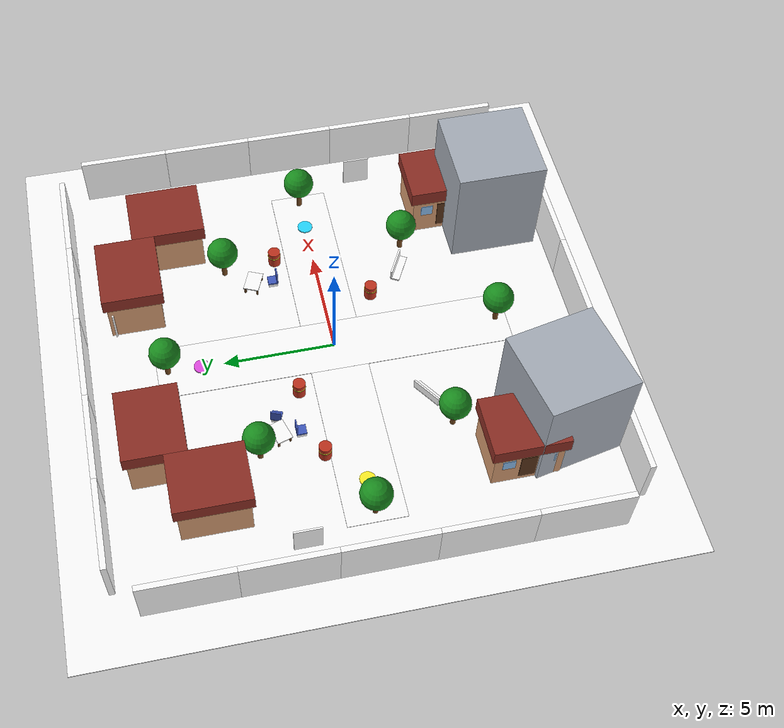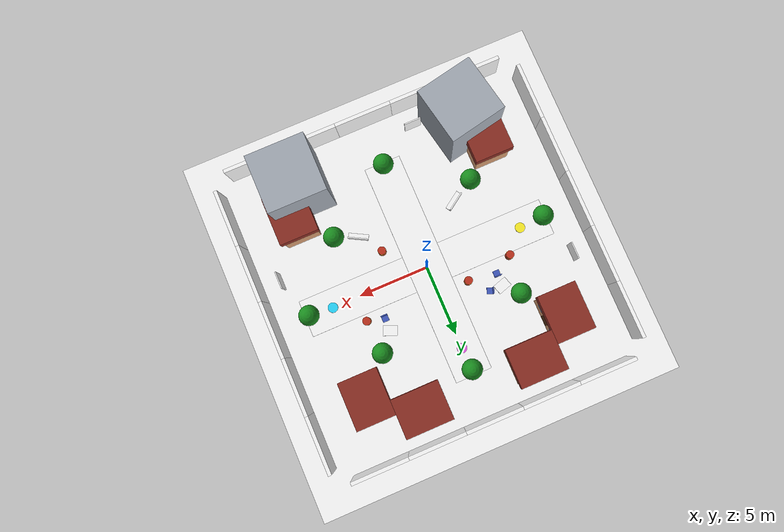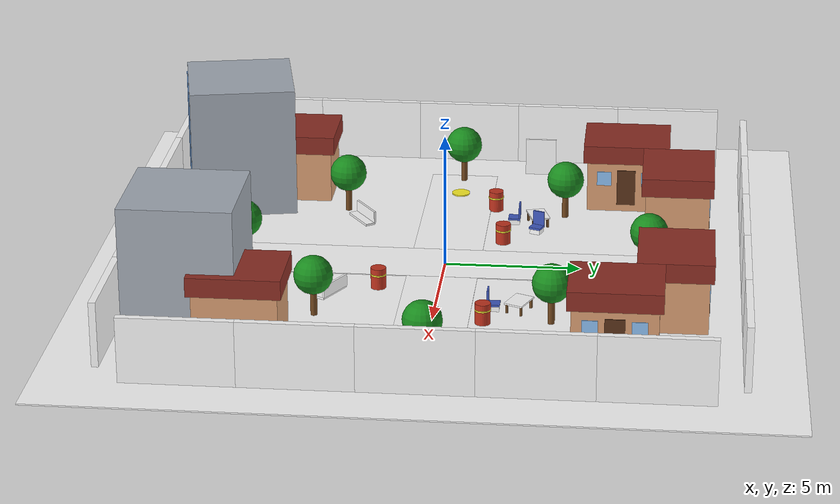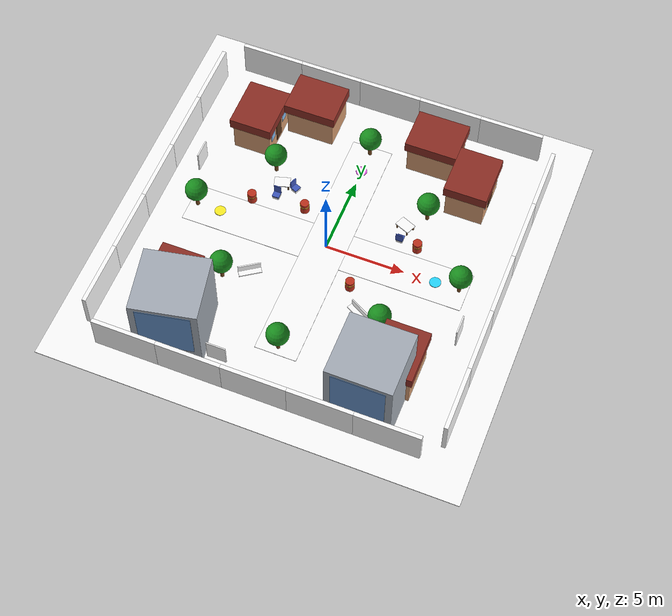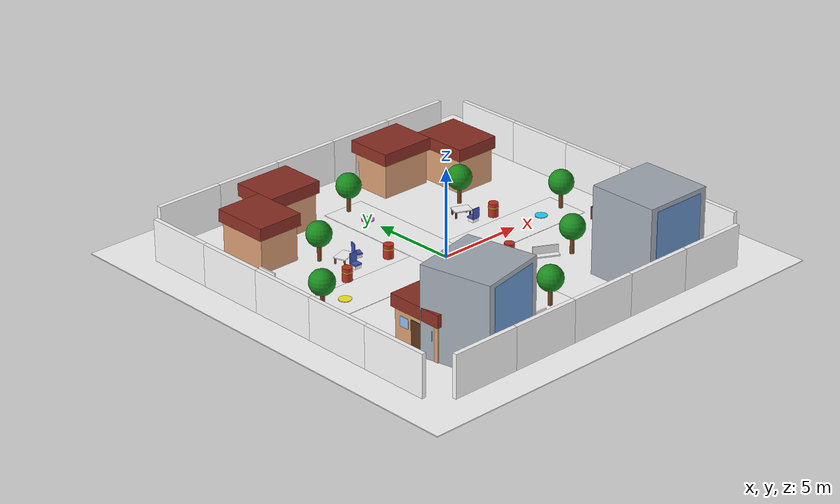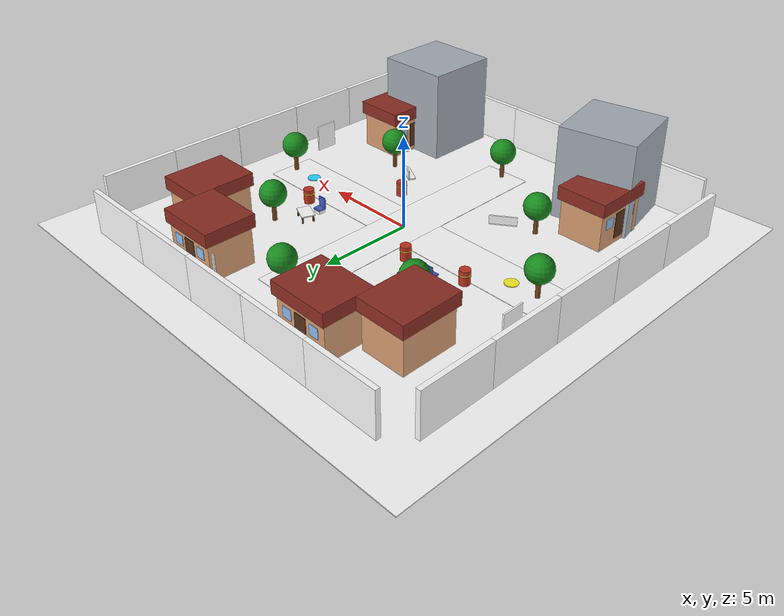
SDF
<?xml version="1.0"?>
<sdf version="1.8">
  <world name="outdoor_path">
    <physics name="1ms" type="ignored">
      <max_step_size>0.001</max_step_size>
      <real_time_factor>1.0</real_time_factor>
    </physics>
    <plugin filename="gz-sim-physics-system" name="gz::sim::systems::Physics"/>
    <plugin filename="gz-sim-user-commands-system" name="gz::sim::systems::UserCommands"/>
    <plugin filename="gz-sim-scene-broadcaster-system" name="gz::sim::systems::SceneBroadcaster"/>
    <plugin filename="gz-sim-sensors-system" name="gz::sim::systems::Sensors">
      <render_engine>ogre2</render_engine>
    </plugin>

    <scene>
      <ambient>0.72 0.72 0.75 1</ambient>
      <background>0.65 0.75 0.88 1</background>
      <shadows>false</shadows>
    </scene>

    <light type="directional" name="sun">
      <cast_shadows>false</cast_shadows>
      <pose>0 0 12 0 0 0</pose>
      <diffuse>0.9 0.9 0.92 1</diffuse>
      <specular>0.05 0.05 0.05 1</specular>
      <direction>0.15 0.1 -1</direction>
    </light>

    <!-- Compact grass field (~26x26) -->
    <model name="grass">
      <static>true</static>
      <link name="grass_link">
        <collision name="col">
          <geometry><box><size>26 26 0.05</size></box></geometry>
        </collision>
        <visual name="vis">
          <cast_shadows>false</cast_shadows>
          <geometry><box><size>26 26 0.05</size></box></geometry>
          <material>
            <ambient>0.2 0.45 0.18 1</ambient>
            <diffuse>1 1 1 1</diffuse>
            <pbr><metal><albedo_map>model://textures/grass.png</albedo_map></metal></pbr>
          </material>
        </visual>
      </link>
    </model>

    <!-- Roads: short E-W + N-S (closed plaza) -->
    <model name="road_ew">
      <static>true</static>
      <pose>0 0 0.03 0 0 0</pose>
      <link name="road_link">
        <collision name="col"><geometry><box><size>18 2.6 0.04</size></box></geometry></collision>
        <visual name="vis">
          <cast_shadows>false</cast_shadows>
          <geometry><box><size>18 2.6 0.04</size></box></geometry>
          <material>
            <ambient>0.35 0.35 0.35 1</ambient>
            <diffuse>1 1 1 1</diffuse>
            <pbr><metal><albedo_map>model://textures/asphalt.png</albedo_map></metal></pbr>
          </material>
        </visual>
      </link>
    </model>
    <model name="road_ns">
      <static>true</static>
      <pose>0 0 0.031 0 0 0</pose>
      <link name="road_link">
        <collision name="col"><geometry><box><size>2.6 16 0.04</size></box></geometry></collision>
        <visual name="vis">
          <cast_shadows>false</cast_shadows>
          <geometry><box><size>2.6 16 0.04</size></box></geometry>
          <material>
            <ambient>0.35 0.35 0.35 1</ambient>
            <diffuse>1 1 1 1</diffuse>
            <pbr><metal><albedo_map>model://textures/asphalt.png</albedo_map></metal></pbr>
          </material>
        </visual>
      </link>
    </model>

    <!-- Perimeter walls (closed courtyard) — wall length 4m each -->
    <!-- North wall y=+11 -->
    <include><name>wall_n0</name><uri>model://simple_wall</uri><pose>-8 11 1.2 0 0 0</pose></include>
    <include><name>wall_n1</name><uri>model://simple_wall</uri><pose>-4 11 1.2 0 0 0</pose></include>
    <include><name>wall_n2</name><uri>model://simple_wall</uri><pose>0 11 1.2 0 0 0</pose></include>
    <include><name>wall_n3</name><uri>model://simple_wall</uri><pose>4 11 1.2 0 0 0</pose></include>
    <include><name>wall_n4</name><uri>model://simple_wall</uri><pose>8 11 1.2 0 0 0</pose></include>
    <!-- South wall y=-11 -->
    <include><name>wall_s0</name><uri>model://simple_wall</uri><pose>-8 -11 1.2 0 0 0</pose></include>
    <include><name>wall_s1</name><uri>model://simple_wall</uri><pose>-4 -11 1.2 0 0 0</pose></include>
    <include><name>wall_s2</name><uri>model://simple_wall</uri><pose>0 -11 1.2 0 0 0</pose></include>
    <include><name>wall_s3</name><uri>model://simple_wall</uri><pose>4 -11 1.2 0 0 0</pose></include>
    <include><name>wall_s4</name><uri>model://simple_wall</uri><pose>8 -11 1.2 0 0 0</pose></include>
    <!-- West wall x=-11 (rotated) -->
    <include><name>wall_w0</name><uri>model://simple_wall</uri><pose>-11 -8 1.2 0 0 1.5708</pose></include>
    <include><name>wall_w1</name><uri>model://simple_wall</uri><pose>-11 -4 1.2 0 0 1.5708</pose></include>
    <include><name>wall_w2</name><uri>model://simple_wall</uri><pose>-11 0 1.2 0 0 1.5708</pose></include>
    <include><name>wall_w3</name><uri>model://simple_wall</uri><pose>-11 4 1.2 0 0 1.5708</pose></include>
    <include><name>wall_w4</name><uri>model://simple_wall</uri><pose>-11 8 1.2 0 0 1.5708</pose></include>
    <!-- East wall x=+11 -->
    <include><name>wall_e0</name><uri>model://simple_wall</uri><pose>11 -8 1.2 0 0 1.5708</pose></include>
    <include><name>wall_e1</name><uri>model://simple_wall</uri><pose>11 -4 1.2 0 0 1.5708</pose></include>
    <include><name>wall_e2</name><uri>model://simple_wall</uri><pose>11 0 1.2 0 0 1.5708</pose></include>
    <include><name>wall_e3</name><uri>model://simple_wall</uri><pose>11 4 1.2 0 0 1.5708</pose></include>
    <include><name>wall_e4</name><uri>model://simple_wall</uri><pose>11 8 1.2 0 0 1.5708</pose></include>

    <!-- Houses packed near walls -->
    <include><name>house_1</name><uri>model://simple_house</uri><pose>-7 6.5 0 0 0 1.5708</pose></include>
    <include><name>house_2</name><uri>model://simple_house</uri><pose>-7 -6.5 0 0 0 -1.5708</pose></include>
    <include><name>house_3</name><uri>model://simple_house</uri><pose>7 6.5 0 0 0 1.5708</pose></include>
    <include><name>house_4</name><uri>model://simple_house</uri><pose>7 -6.5 0 0 0 -1.5708</pose></include>
    <include><name>house_5</name><uri>model://simple_house</uri><pose>-4 8.5 0 0 0 3.1416</pose></include>
    <include><name>house_6</name><uri>model://simple_house</uri><pose>4 8.5 0 0 0 3.1416</pose></include>

    <include><name>building_1</name><uri>model://simple_building</uri><pose>6 -8.5 0 0 0 0</pose></include>
    <include><name>building_2</name><uri>model://simple_building</uri><pose>-6 -8.5 0 0 0 0.2</pose></include>

    <!-- Furniture / clutter (visual landmarks) -->
    <include><name>table_1</name><uri>model://simple_table</uri><pose>-4.2 3.2 0 0 0 0.3</pose></include>
    <include><name>chair_1</name><uri>model://simple_chair</uri><pose>-4.2 2.3 0 0 0 0</pose></include>
    <include><name>chair_2</name><uri>model://simple_chair</uri><pose>-3.3 3.2 0 0 0 1.2</pose></include>
    <include><name>table_2</name><uri>model://simple_table</uri><pose>4.0 3.0 0 0 0 -0.4</pose></include>
    <include><name>chair_3</name><uri>model://simple_chair</uri><pose>4.0 2.1 0 0 0 3.14</pose></include>
    <include><name>bench_1</name><uri>model://simple_bench</uri><pose>-3.5 -3.5 0 0 0 0.6</pose></include>
    <include><name>bench_2</name><uri>model://simple_bench</uri><pose>3.5 -3.8 0 0 0 -0.5</pose></include>
    <include><name>barrel_1</name><uri>model://simple_barrel</uri><pose>-2.2 2.0 0 0 0 0</pose></include>
    <include><name>barrel_2</name><uri>model://simple_barrel</uri><pose>2.4 -2.2 0 0 0 0.5</pose></include>
    <include><name>barrel_3</name><uri>model://simple_barrel</uri><pose>-5.5 1.5 0 0 0 0</pose></include>
    <include><name>barrel_4</name><uri>model://simple_barrel</uri><pose>5.2 1.8 0 0 0 0</pose></include>

    <!-- Checker panels = strong visual landmarks for RTAB -->
    <include><name>check_1</name><uri>model://checker_panel</uri><pose>-9.5 3 0 0 0 1.5708</pose></include>
    <include><name>check_2</name><uri>model://checker_panel</uri><pose>9.5 -3 0 0 0 -1.5708</pose></include>
    <include><name>check_3</name><uri>model://checker_panel</uri><pose>3 9.5 0 0 0 0</pose></include>
    <include><name>check_4</name><uri>model://checker_panel</uri><pose>-3 -9.5 0 0 0 3.1416</pose></include>

    <!-- Trees -->
    <include><name>tree_0</name><uri>model://simple_tree</uri><pose>-5 4.2 0 0 0 0</pose></include>
    <include><name>tree_1</name><uri>model://simple_tree</uri><pose>5 4.2 0 0 0 0</pose></include>
    <include><name>tree_2</name><uri>model://simple_tree</uri><pose>-5 -4.2 0 0 0 0</pose></include>
    <include><name>tree_3</name><uri>model://simple_tree</uri><pose>5 -4.2 0 0 0 0</pose></include>
    <include><name>tree_4</name><uri>model://simple_tree</uri><pose>-8.5 0 0 0 0 0</pose></include>
    <include><name>tree_5</name><uri>model://simple_tree</uri><pose>8.5 0 0 0 0 0</pose></include>
    <include><name>tree_6</name><uri>model://simple_tree</uri><pose>0 7.5 0 0 0 0</pose></include>
    <include><name>tree_7</name><uri>model://simple_tree</uri><pose>0 -7.5 0 0 0 0</pose></include>

    <!-- Goals -->
    <model name="point_A">
      <static>true</static>
      <pose>-7 0 0.08 0 0 0</pose>
      <link name="link">
        <visual name="vis">
          <cast_shadows>false</cast_shadows>
          <geometry><cylinder><radius>0.35</radius><length>0.05</length></cylinder></geometry>
          <material><ambient>0.9 0.8 0.1 1</ambient><diffuse>1 0.95 0.15 1</diffuse></material>
        </visual>
      </link>
    </model>
    <model name="point_B">
      <static>true</static>
      <pose>7 0 0.08 0 0 0</pose>
      <link name="link">
        <visual name="vis">
          <cast_shadows>false</cast_shadows>
          <geometry><cylinder><radius>0.35</radius><length>0.05</length></cylinder></geometry>
          <material><ambient>0.1 0.6 0.8 1</ambient><diffuse>0.15 0.85 1 1</diffuse></material>
        </visual>
      </link>
    </model>
    <model name="point_C">
      <static>true</static>
      <pose>0 6 0.08 0 0 0</pose>
      <link name="link">
        <visual name="vis">
          <cast_shadows>false</cast_shadows>
          <geometry><cylinder><radius>0.35</radius><length>0.05</length></cylinder></geometry>
          <material><ambient>0.7 0.2 0.7 1</ambient><diffuse>0.9 0.3 0.9 1</diffuse></material>
        </visual>
      </link>
    </model>
  </world>
</sdf>

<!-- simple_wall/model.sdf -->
<sdf version="1.8">
  <model name="simple_wall">
    <static>true</static>
    <link name="link">
      <collision name="col">
        <geometry><box><size>4.0 0.25 2.4</size></box></geometry>
      </collision>
      <visual name="vis">
        <cast_shadows>false</cast_shadows>
        <geometry><box><size>4.0 0.25 2.4</size></box></geometry>
        <material>
          <ambient>0.7 0.7 0.7 1</ambient>
          <diffuse>1 1 1 1</diffuse>
          <pbr>
            <metal>
              <albedo_map>model://textures/brick.png</albedo_map>
            </metal>
          </pbr>
        </material>
      </visual>
    </link>
  </model>
</sdf>

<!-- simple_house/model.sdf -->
<sdf version="1.8">
  <model name="simple_house">
    <static>true</static>
    <link name="body">
      <pose>0 0 1.0 0 0 0</pose>
      <collision name="body_col">
        <geometry><box><size>3.0 2.4 2.0</size></box></geometry>
      </collision>
      <visual name="body_vis">
        <cast_shadows>false</cast_shadows>
        <geometry><box><size>3.0 2.4 2.0</size></box></geometry>
        <material>
          <ambient>0.75 0.55 0.40 1</ambient>
          <diffuse>0.85 0.62 0.45 1</diffuse>
        </material>
      </visual>
      <visual name="roof_vis">
        <cast_shadows>false</cast_shadows>
        <pose>0 0 1.35 0 0 0</pose>
        <geometry><box><size>3.3 2.7 0.7</size></box></geometry>
        <material>
          <ambient>0.45 0.15 0.12 1</ambient>
          <diffuse>0.55 0.18 0.14 1</diffuse>
        </material>
      </visual>
      <visual name="door_vis">
        <cast_shadows>false</cast_shadows>
        <pose>0 -1.21 0.0 0 0 0</pose>
        <geometry><box><size>0.7 0.05 1.4</size></box></geometry>
        <material>
          <ambient>0.25 0.15 0.08 1</ambient>
          <diffuse>0.35 0.20 0.10 1</diffuse>
        </material>
      </visual>
      <visual name="window_l">
        <cast_shadows>false</cast_shadows>
        <pose>-0.85 -1.21 0.35 0 0 0</pose>
        <geometry><box><size>0.55 0.04 0.55</size></box></geometry>
        <material>
          <ambient>0.45 0.65 0.85 1</ambient>
          <diffuse>0.55 0.75 0.95 1</diffuse>
        </material>
      </visual>
      <visual name="window_r">
        <cast_shadows>false</cast_shadows>
        <pose>0.85 -1.21 0.35 0 0 0</pose>
        <geometry><box><size>0.55 0.04 0.55</size></box></geometry>
        <material>
          <ambient>0.45 0.65 0.85 1</ambient>
          <diffuse>0.55 0.75 0.95 1</diffuse>
        </material>
      </visual>
    </link>
  </model>
</sdf>

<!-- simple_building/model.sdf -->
<sdf version="1.8">
  <model name="simple_building">
    <static>true</static>
    <link name="body">
      <pose>0 0 2.5 0 0 0</pose>
      <collision name="body_col">
        <geometry><box><size>4.0 4.0 5.0</size></box></geometry>
      </collision>
      <visual name="body_vis">
        <cast_shadows>false</cast_shadows>
        <geometry><box><size>4.0 4.0 5.0</size></box></geometry>
        <material>
          <ambient>0.55 0.58 0.62 1</ambient>
          <diffuse>0.65 0.68 0.72 1</diffuse>
        </material>
      </visual>
      <visual name="win_front">
        <cast_shadows>false</cast_shadows>
        <pose>0 -2.01 0.5 0 0 0</pose>
        <geometry><box><size>3.2 0.05 3.5</size></box></geometry>
        <material>
          <ambient>0.35 0.50 0.70 1</ambient>
          <diffuse>0.40 0.58 0.80 1</diffuse>
        </material>
      </visual>
    </link>
  </model>
</sdf>

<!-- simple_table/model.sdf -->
<sdf version="1.8">
  <model name="simple_table">
    <static>true</static>
    <link name="link">
      <pose>0 0 0.4 0 0 0</pose>
      <collision name="top_col">
        <geometry><box><size>1.0 0.7 0.06</size></box></geometry>
      </collision>
      <visual name="top">
        <cast_shadows>false</cast_shadows>
        <geometry><box><size>1.0 0.7 0.06</size></box></geometry>
        <material>
          <ambient>0.55 0.4 0.25 1</ambient>
          <diffuse>1 1 1 1</diffuse>
          <pbr><metal><albedo_map>model://textures/wood.png</albedo_map></metal></pbr>
        </material>
      </visual>
      <visual name="leg1">
        <cast_shadows>false</cast_shadows>
        <pose>-0.4 -0.28 -0.37 0 0 0</pose>
        <geometry><box><size>0.08 0.08 0.7</size></box></geometry>
        <material><ambient>0.3 0.2 0.1 1</ambient><diffuse>0.45 0.3 0.15 1</diffuse></material>
      </visual>
      <visual name="leg2">
        <cast_shadows>false</cast_shadows>
        <pose>0.4 -0.28 -0.37 0 0 0</pose>
        <geometry><box><size>0.08 0.08 0.7</size></box></geometry>
        <material><ambient>0.3 0.2 0.1 1</ambient><diffuse>0.45 0.3 0.15 1</diffuse></material>
      </visual>
      <visual name="leg3">
        <cast_shadows>false</cast_shadows>
        <pose>-0.4 0.28 -0.37 0 0 0</pose>
        <geometry><box><size>0.08 0.08 0.7</size></box></geometry>
        <material><ambient>0.3 0.2 0.1 1</ambient><diffuse>0.45 0.3 0.15 1</diffuse></material>
      </visual>
      <visual name="leg4">
        <cast_shadows>false</cast_shadows>
        <pose>0.4 0.28 -0.37 0 0 0</pose>
        <geometry><box><size>0.08 0.08 0.7</size></box></geometry>
        <material><ambient>0.3 0.2 0.1 1</ambient><diffuse>0.45 0.3 0.15 1</diffuse></material>
      </visual>
    </link>
  </model>
</sdf>

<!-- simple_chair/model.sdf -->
<sdf version="1.8">
  <model name="simple_chair">
    <static>true</static>
    <link name="link">
      <pose>0 0 0.25 0 0 0</pose>
      <collision name="seat_col">
        <geometry><box><size>0.45 0.45 0.08</size></box></geometry>
      </collision>
      <visual name="seat">
        <cast_shadows>false</cast_shadows>
        <geometry><box><size>0.45 0.45 0.08</size></box></geometry>
        <material>
          <ambient>0.2 0.25 0.55 1</ambient>
          <diffuse>0.25 0.35 0.75 1</diffuse>
        </material>
      </visual>
      <visual name="back">
        <cast_shadows>false</cast_shadows>
        <pose>0 0.2 0.3 0 0 0</pose>
        <geometry><box><size>0.45 0.06 0.55</size></box></geometry>
        <material>
          <ambient>0.2 0.25 0.55 1</ambient>
          <diffuse>0.25 0.35 0.75 1</diffuse>
        </material>
      </visual>
      <visual name="leg">
        <cast_shadows>false</cast_shadows>
        <pose>0 0 -0.2 0 0 0</pose>
        <geometry><box><size>0.4 0.4 0.35</size></box></geometry>
        <material>
          <ambient>0.35 0.25 0.15 1</ambient>
          <diffuse>1 1 1 1</diffuse>
          <pbr><metal><albedo_map>model://textures/wood.png</albedo_map></metal></pbr>
        </material>
      </visual>
    </link>
  </model>
</sdf>

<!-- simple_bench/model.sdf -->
<sdf version="1.8">
  <model name="simple_bench">
    <static>true</static>
    <link name="link">
      <pose>0 0 0.28 0 0 0</pose>
      <collision name="col">
        <geometry><box><size>1.4 0.4 0.08</size></box></geometry>
      </collision>
      <visual name="seat">
        <cast_shadows>false</cast_shadows>
        <geometry><box><size>1.4 0.4 0.08</size></box></geometry>
        <material>
          <ambient>0.45 0.3 0.15 1</ambient>
          <diffuse>1 1 1 1</diffuse>
          <pbr><metal><albedo_map>model://textures/wood.png</albedo_map></metal></pbr>
        </material>
      </visual>
      <visual name="back">
        <cast_shadows>false</cast_shadows>
        <pose>0 0.18 0.25 0 0 0</pose>
        <geometry><box><size>1.4 0.08 0.45</size></box></geometry>
        <material>
          <ambient>0.45 0.3 0.15 1</ambient>
          <diffuse>1 1 1 1</diffuse>
          <pbr><metal><albedo_map>model://textures/wood.png</albedo_map></metal></pbr>
        </material>
      </visual>
    </link>
  </model>
</sdf>

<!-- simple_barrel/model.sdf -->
<sdf version="1.8">
  <model name="simple_barrel">
    <static>true</static>
    <link name="link">
      <pose>0 0 0.4 0 0 0</pose>
      <collision name="col">
        <geometry><cylinder><radius>0.28</radius><length>0.8</length></cylinder></geometry>
      </collision>
      <visual name="vis">
        <cast_shadows>false</cast_shadows>
        <geometry><cylinder><radius>0.28</radius><length>0.8</length></cylinder></geometry>
        <material>
          <ambient>0.55 0.15 0.1 1</ambient>
          <diffuse>0.75 0.2 0.12 1</diffuse>
        </material>
      </visual>
      <visual name="ring">
        <cast_shadows>false</cast_shadows>
        <pose>0 0 0.15 0 0 0</pose>
        <geometry><cylinder><radius>0.29</radius><length>0.06</length></cylinder></geometry>
        <material>
          <ambient>0.7 0.7 0.15 1</ambient>
          <diffuse>0.95 0.9 0.2 1</diffuse>
        </material>
      </visual>
    </link>
  </model>
</sdf>

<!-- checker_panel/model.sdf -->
<sdf version="1.8">
  <model name="checker_panel">
    <static>true</static>
    <link name="link">
      <pose>0 0 0.75 0 0 0</pose>
      <collision name="col">
        <geometry><box><size>1.2 0.08 1.5</size></box></geometry>
      </collision>
      <visual name="vis">
        <cast_shadows>false</cast_shadows>
        <geometry><box><size>1.2 0.08 1.5</size></box></geometry>
        <material>
          <ambient>0.8 0.8 0.8 1</ambient>
          <diffuse>1 1 1 1</diffuse>
          <pbr><metal><albedo_map>model://textures/checker.png</albedo_map></metal></pbr>
        </material>
      </visual>
    </link>
  </model>
</sdf>

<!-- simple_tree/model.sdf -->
<sdf version="1.8">
  <model name="simple_tree">
    <static>true</static>
    <link name="trunk">
      <pose>0 0 0.6 0 0 0</pose>
      <collision name="trunk_col">
        <geometry><cylinder><radius>0.12</radius><length>1.2</length></cylinder></geometry>
      </collision>
      <visual name="trunk_vis">
        <cast_shadows>false</cast_shadows>
        <geometry><cylinder><radius>0.12</radius><length>1.2</length></cylinder></geometry>
        <material>
          <ambient>0.35 0.22 0.10 1</ambient>
          <diffuse>0.45 0.28 0.12 1</diffuse>
        </material>
      </visual>
    </link>
    <link name="canopy">
      <pose>0 0 1.55 0 0 0</pose>
      <collision name="canopy_col">
        <geometry><sphere><radius>0.7</radius></sphere></geometry>
      </collision>
      <visual name="canopy_vis">
        <cast_shadows>false</cast_shadows>
        <geometry><sphere><radius>0.7</radius></sphere></geometry>
        <material>
          <ambient>0.05 0.35 0.08 1</ambient>
          <diffuse>0.1 0.55 0.12 1</diffuse>
        </material>
      </visual>
    </link>
  </model>
</sdf>
